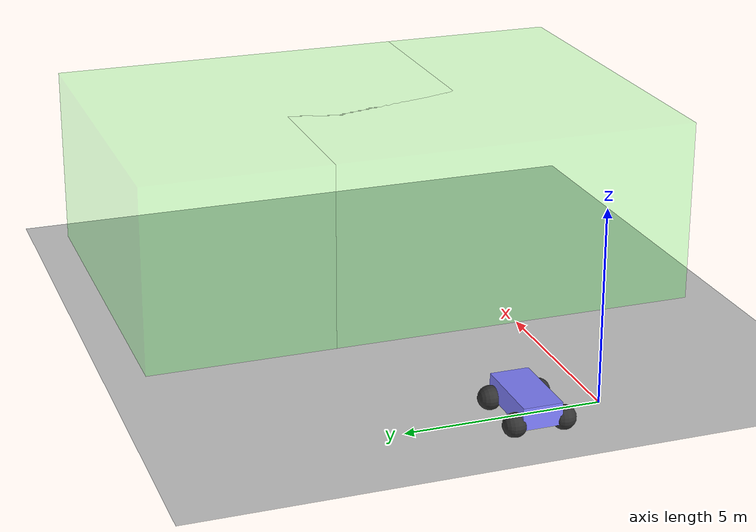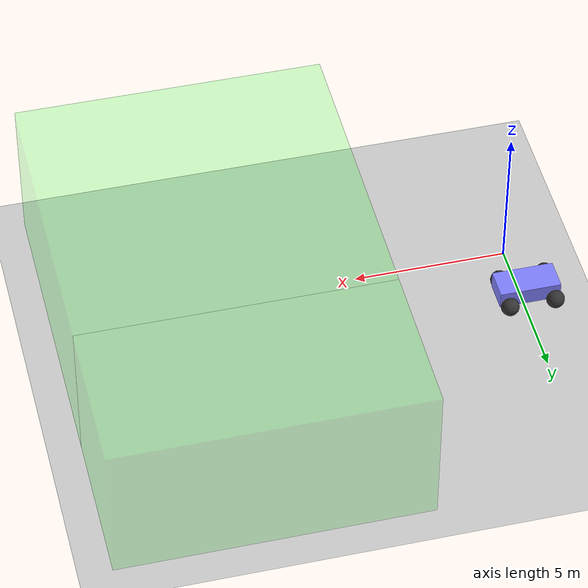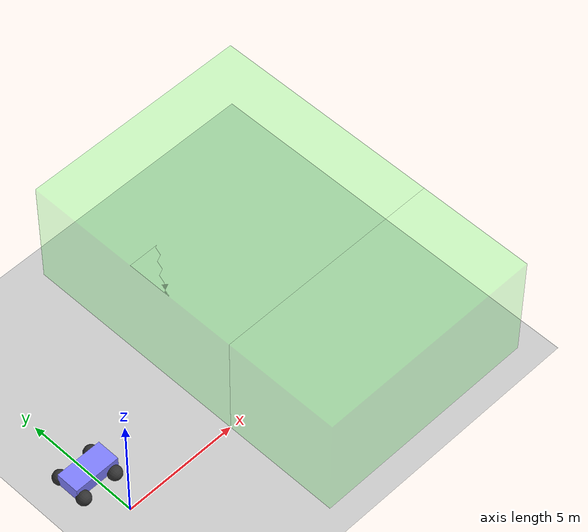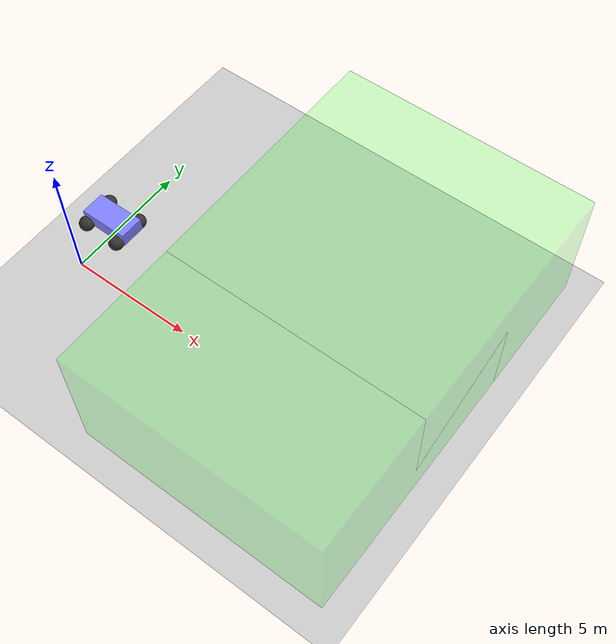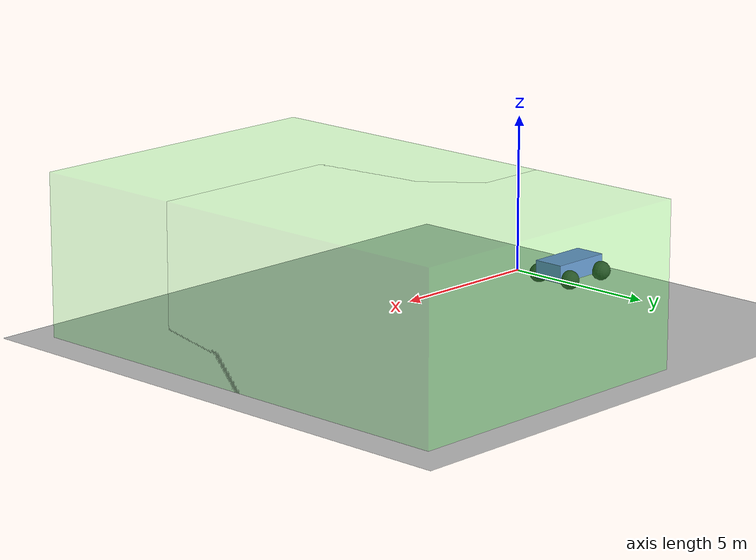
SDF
<?xml version="1.0" ?>

<sdf version="1.6">
  <world name="performer_detector">
    <plugin
      filename="gz-sim-apply-link-wrench-system"
      name="gz::sim::systems::ApplyLinkWrench">
    </plugin>

    <physics name="1ms" type="ode">
      <max_step_size>0.001</max_step_size>
      <real_time_factor>1.0</real_time_factor>
    </physics>
    <plugin
      filename="gz-sim-physics-system"
      name="gz::sim::systems::Physics">
    </plugin>
    <plugin
      filename="gz-sim-user-commands-system"
      name="gz::sim::systems::UserCommands">
    </plugin>
    <plugin
      filename="gz-sim-scene-broadcaster-system"
      name="gz::sim::systems::SceneBroadcaster">
    </plugin>

    <light type="directional" name="sun">
      <cast_shadows>true</cast_shadows>
      <pose>0 0 10 0 0 0</pose>
      <diffuse>1 1 1 1</diffuse>
      <specular>0.5 0.5 0.5 1</specular>
      <attenuation>
        <range>1000</range>
        <constant>0.9</constant>
        <linear>0.01</linear>
        <quadratic>0.001</quadratic>
      </attenuation>
      <direction>-0.5 0.1 -0.9</direction>
    </light>

    <model name="ground_plane">
      <static>true</static>
      <link name="link">
        <collision name="collision">
          <geometry>
            <plane>
              <normal>0 0 1</normal>
              <size>100 100</size>
            </plane>
          </geometry>
        </collision>
        <visual name="visual">
          <geometry>
            <plane>
              <normal>0 0 1</normal>
              <size>100 100</size>
            </plane>
          </geometry>
          <material>
            <ambient>0.8 0.8 0.8 1</ambient>
            <diffuse>0.8 0.8 0.8 1</diffuse>
            <specular>0.8 0.8 0.8 1</specular>
          </material>
        </visual>
      </link>
    </model>

    <model name='vehicle_blue'>
      <pose>0 2 0.325 0 -0 0</pose>
      <self_collide>true</self_collide>

      <link name='chassis'>
        <pose>-0.151427 -0 0.175 0 -0 0</pose>
        <inertial>
          <mass>1.14395</mass>
          <inertia>
            <ixx>0.126164</ixx>
            <ixy>0</ixy>
            <ixz>0</ixz>
            <iyy>0.416519</iyy>
            <iyz>0</iyz>
            <izz>0.481014</izz>
          </inertia>
        </inertial>
        <visual name='visual'>
          <geometry>
            <box>
              <size>2.01142 1 0.568726</size>
            </box>
          </geometry>
          <material>
            <ambient>0.5 0.5 1.0 1</ambient>
            <diffuse>0.5 0.5 1.0 1</diffuse>
            <specular>0.0 0.0 1.0 1</specular>
          </material>
        </visual>
        <collision name='collision'>
          <geometry>
            <box>
              <size>2.01142 1 0.568726</size>
            </box>
          </geometry>
        </collision>
      </link>

      <link name='front_left_wheel'>
        <pose>0.554283 0.625029 -0.025 -1.5707 0 0</pose>
        <inertial>
          <mass>2</mass>
          <inertia>
            <ixx>0.145833</ixx>
            <ixy>0</ixy>
            <ixz>0</ixz>
            <iyy>0.145833</iyy>
            <iyz>0</iyz>
            <izz>0.125</izz>
          </inertia>
        </inertial>
        <visual name='visual'>
          <geometry>
            <sphere>
              <radius>0.3</radius>
            </sphere>
          </geometry>
          <material>
            <ambient>0.2 0.2 0.2 1</ambient>
            <diffuse>0.2 0.2 0.2 1</diffuse>
            <specular>0.2 0.2 0.2 1</specular>
          </material>
        </visual>
        <collision name='collision'>
          <geometry>
            <sphere>
              <radius>0.3</radius>
            </sphere>
          </geometry>
          <surface>
            <friction>
              <ode>
                <mu>1</mu>
                <mu2>1</mu2>
                <slip1>0.035</slip1>
                <slip2>0</slip2>
                <fdir1>0 0 1</fdir1>
              </ode>
              <bullet>
                <friction>1</friction>
                <friction2>1</friction2>
                <rolling_friction>0.1</rolling_friction>
              </bullet>
            </friction>
          </surface>
        </collision>
      </link>

      <link name='rear_left_wheel'>
        <pose>-0.957138 0.625029 -0.025 -1.5707 0 0</pose>
        <inertial>
          <mass>2</mass>
          <inertia>
            <ixx>0.145833</ixx>
            <ixy>0</ixy>
            <ixz>0</ixz>
            <iyy>0.145833</iyy>
            <iyz>0</iyz>
            <izz>0.125</izz>
          </inertia>
        </inertial>
        <visual name='visual'>
          <geometry>
            <sphere>
              <radius>0.3</radius>
            </sphere>
          </geometry>
          <material>
            <ambient>0.2 0.2 0.2 1</ambient>
            <diffuse>0.2 0.2 0.2 1</diffuse>
            <specular>0.2 0.2 0.2 1</specular>
          </material>
        </visual>
        <collision name='collision'>
          <geometry>
            <sphere>
              <radius>0.3</radius>
            </sphere>
          </geometry>
          <surface>
            <friction>
              <ode>
                <mu>1</mu>
                <mu2>1</mu2>
                <slip1>0.035</slip1>
                <slip2>0</slip2>
                <fdir1>0 0 1</fdir1>
              </ode>
              <bullet>
                <friction>1</friction>
                <friction2>1</friction2>
                <rolling_friction>0.1</rolling_friction>
              </bullet>
            </friction>
          </surface>
        </collision>
      </link>

      <link name='front_right_wheel'>
        <pose>0.554282 -0.625029 -0.025 -1.5707 0 0</pose>
        <inertial>
          <mass>2</mass>
          <inertia>
            <ixx>0.145833</ixx>
            <ixy>0</ixy>
            <ixz>0</ixz>
            <iyy>0.145833</iyy>
            <iyz>0</iyz>
            <izz>0.125</izz>
          </inertia>
        </inertial>
        <visual name='visual'>
          <geometry>
            <sphere>
              <radius>0.3</radius>
            </sphere>
          </geometry>
          <material>
            <ambient>0.2 0.2 0.2 1</ambient>
            <diffuse>0.2 0.2 0.2 1</diffuse>
            <specular>0.2 0.2 0.2 1</specular>
          </material>
        </visual>
        <collision name='collision'>
          <geometry>
            <sphere>
              <radius>0.3</radius>
            </sphere>
          </geometry>
          <surface>
            <friction>
              <ode>
                <mu>1</mu>
                <mu2>1</mu2>
                <slip1>0.035</slip1>
                <slip2>0</slip2>
                <fdir1>0 0 1</fdir1>
              </ode>
              <bullet>
                <friction>1</friction>
                <friction2>1</friction2>
                <rolling_friction>0.1</rolling_friction>
              </bullet>
            </friction>
          </surface>
        </collision>
      </link>

      <link name='rear_right_wheel'>
        <pose>-0.957138 -0.625029 -0.025 -1.5707 0 0</pose>
        <inertial>
          <mass>2</mass>
          <inertia>
            <ixx>0.145833</ixx>
            <ixy>0</ixy>
            <ixz>0</ixz>
            <iyy>0.145833</iyy>
            <iyz>0</iyz>
            <izz>0.125</izz>
          </inertia>
        </inertial>
        <visual name='visual'>
          <geometry>
            <sphere>
              <radius>0.3</radius>
            </sphere>
          </geometry>
          <material>
            <ambient>0.2 0.2 0.2 1</ambient>
            <diffuse>0.2 0.2 0.2 1</diffuse>
            <specular>0.2 0.2 0.2 1</specular>
          </material>
        </visual>
        <collision name='collision'>
          <geometry>
            <sphere>
              <radius>0.3</radius>
            </sphere>
          </geometry>
          <surface>
            <friction>
              <ode>
                <mu>1</mu>
                <mu2>1</mu2>
                <slip1>0.035</slip1>
                <slip2>0</slip2>
                <fdir1>0 0 1</fdir1>
              </ode>
              <bullet>
                <friction>1</friction>
                <friction2>1</friction2>
                <rolling_friction>0.1</rolling_friction>
              </bullet>
            </friction>
          </surface>
        </collision>
      </link>

      <joint name='front_left_wheel_joint' type='revolute'>
        <parent>chassis</parent>
        <child>front_left_wheel</child>
        <axis>
          <xyz>0 0 1</xyz>
          <limit>
            <lower>-1.79769e+308</lower>
            <upper>1.79769e+308</upper>
          </limit>
        </axis>
      </joint>

      <joint name='front_right_wheel_joint' type='revolute'>
        <parent>chassis</parent>
        <child>front_right_wheel</child>
        <axis>
          <xyz>0 0 1</xyz>
          <limit>
            <lower>-1.79769e+308</lower>
            <upper>1.79769e+308</upper>
          </limit>
        </axis>
      </joint>

      <joint name='rear_left_wheel_joint' type='revolute'>
        <parent>chassis</parent>
        <child>rear_left_wheel</child>
        <axis>
          <xyz>0 0 1</xyz>
          <limit>
            <lower>-1.79769e+308</lower>
            <upper>1.79769e+308</upper>
          </limit>
        </axis>
      </joint>

      <joint name='rear_right_wheel_joint' type='revolute'>
        <parent>chassis</parent>
        <child>rear_right_wheel</child>
        <axis>
          <xyz>0 0 1</xyz>
          <limit>
            <lower>-1.79769e+308</lower>
            <upper>1.79769e+308</upper>
          </limit>
        </axis>
      </joint>

      <plugin
        filename="gz-sim-diff-drive-system"
        name="gz::sim::systems::DiffDrive">
        <left_joint>front_left_wheel_joint</left_joint>
        <left_joint>rear_left_wheel_joint</left_joint>
        <right_joint>front_right_wheel_joint</right_joint>
        <right_joint>rear_right_wheel_joint</right_joint>
        <wheel_separation>1.25</wheel_separation>
        <wheel_radius>0.3</wheel_radius>
      </plugin>
    </model>

    <model name="detector1">
      <static>true</static>
      <pose>10 0 2.5 0 0 0</pose>
      <link name='body'>
        <visual name='visual'>
          <transparency>0.9</transparency>
          <geometry>
            <box>
              <size>10 10 5</size>
            </box>
          </geometry>
          <material>
            <ambient>0.0 1.0 0.0 1</ambient>
            <diffuse>0.0 1.0 0.0 1</diffuse>
            <specular>0.5 0.5 0.5 1</specular>
          </material>
          <cast_shadows>false</cast_shadows>
        </visual>
      </link>
      <plugin
        filename="gz-sim-performer-detector-system"
        name="gz::sim::systems::PerformerDetector">
        <topic>/performer_detector</topic>
        <geometry>
          <box>
            <size>10 10 5</size>
          </box>
        </geometry>
      </plugin>
    </model>
    <model name="detector2">
      <static>true</static>
      <pose>10 5 2.5 0 0 0</pose>
      <link name='body'>
        <visual name='visual'>
          <transparency>0.9</transparency>
          <geometry>
            <box>
              <size>10 10 5</size>
            </box>
          </geometry>
          <material>
            <ambient>0.0 1.0 0.0 1</ambient>
            <diffuse>0.0 1.0 0.0 1</diffuse>
            <specular>0.5 0.5 0.5 1</specular>
          </material>
          <cast_shadows>false</cast_shadows>
        </visual>
      </link>
      <plugin filename="gz-sim-performer-detector-system" name="gz::sim::systems::PerformerDetector">
        <topic>/performer_detector</topic>
        <geometry>
          <box>
            <size>10 10 5</size>
          </box>
        </geometry>
      </plugin>
    </model>

  <plugin name="gz::sim" filename="dummy">

    <performer name="perf_vehicle_blue">
      <ref>vehicle_blue</ref>
      <geometry>
        <box>
          <size>2 2 2</size>
        </box>
      </geometry>
    </performer>

  </plugin>

</world>
</sdf>
